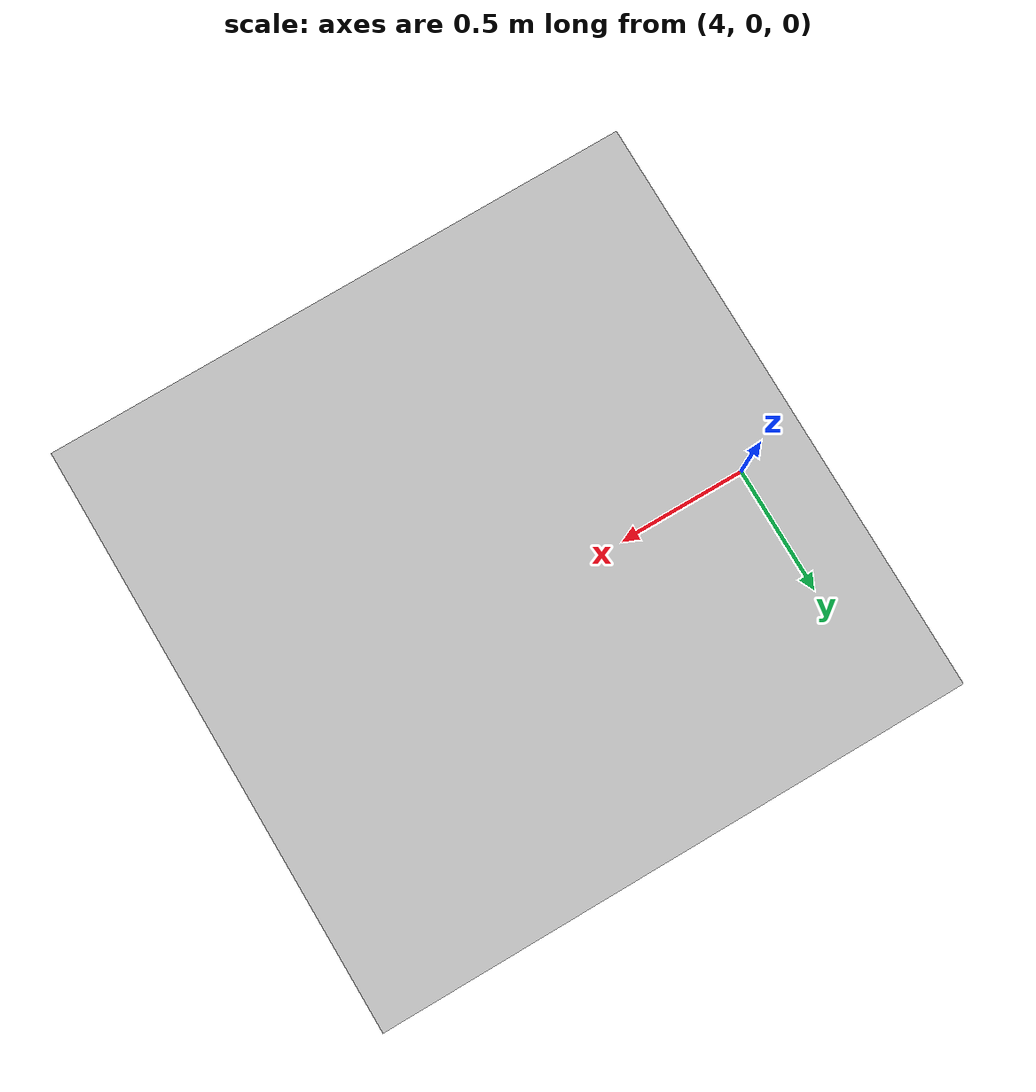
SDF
<?xml version="1.0" ?>
<sdf version="1.5">
  <model name="qrcode_cube">
    <link name="link">
      <pose>5.0 0.0 0.05 0 0 0</pose>
      <inertial>
        <mass>0.5167</mass>
        <inertia>
          <ixx>0.0008611666666666669</ixx>
          <ixy>0</ixy>
          <ixz>0</ixz>
          <iyy>0.0008611666666666669</iyy>
          <iyz>0</iyz>
          <izz>0.0008611666666666669</izz>
        </inertia>
      </inertial>

      <collision name="collision">
        <geometry>
          <box>
            <size>2 2 2</size>
          </box>
        </geometry>
        <surface>
          <contact>
            <poissons_ratio>0.347</poissons_ratio>
            <elastic_modulus>8.8e+09</elastic_modulus>
            <ode>
              <kp>100000</kp>
              <kd>100</kd>
              <max_vel>100.0</max_vel>
              <min_depth>0.001</min_depth>
            </ode>
          </contact>
          <friction>
	    <ode>
 	      <mu>0.2</mu>
	      <mu2>0.2</mu2>
            </ode>
          </friction>
        </surface>
      </collision>

      <visual name="visual">
        <geometry>
          <box>
            <size>2 2 2</size>
          </box>
        </geometry>
        <material>
          <script>
            <uri>model://qrcode_cube/materials/scripts</uri>
	          <uri>model://qrcode_cube/materials/textures</uri>
            <name>Cube/QRCode</name>
          </script>
        </material>
      </visual>

    </link>
  </model>
</sdf>
